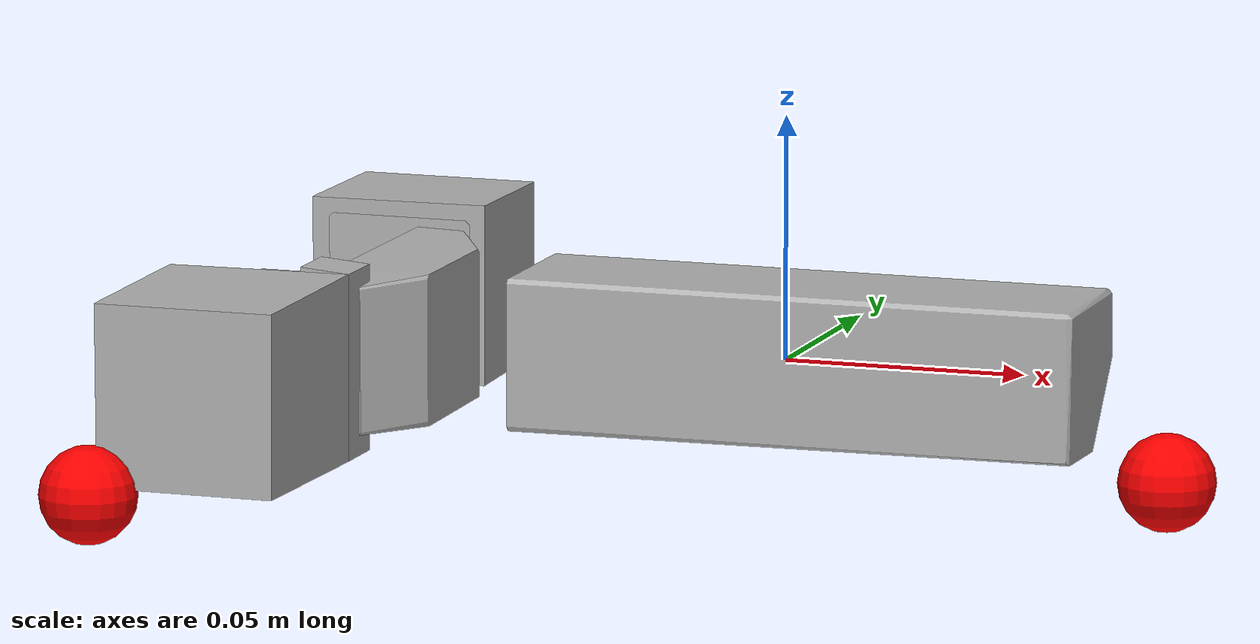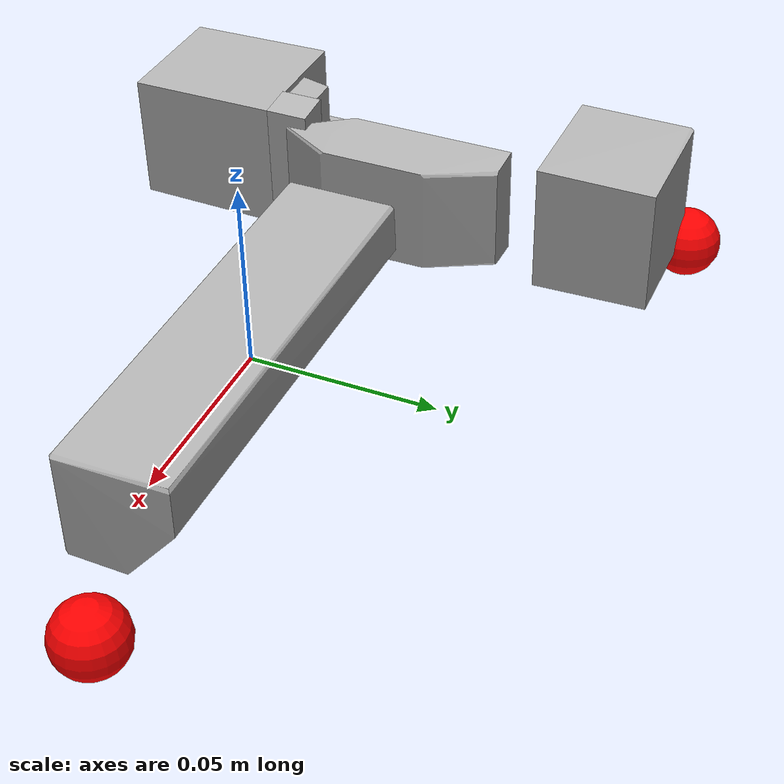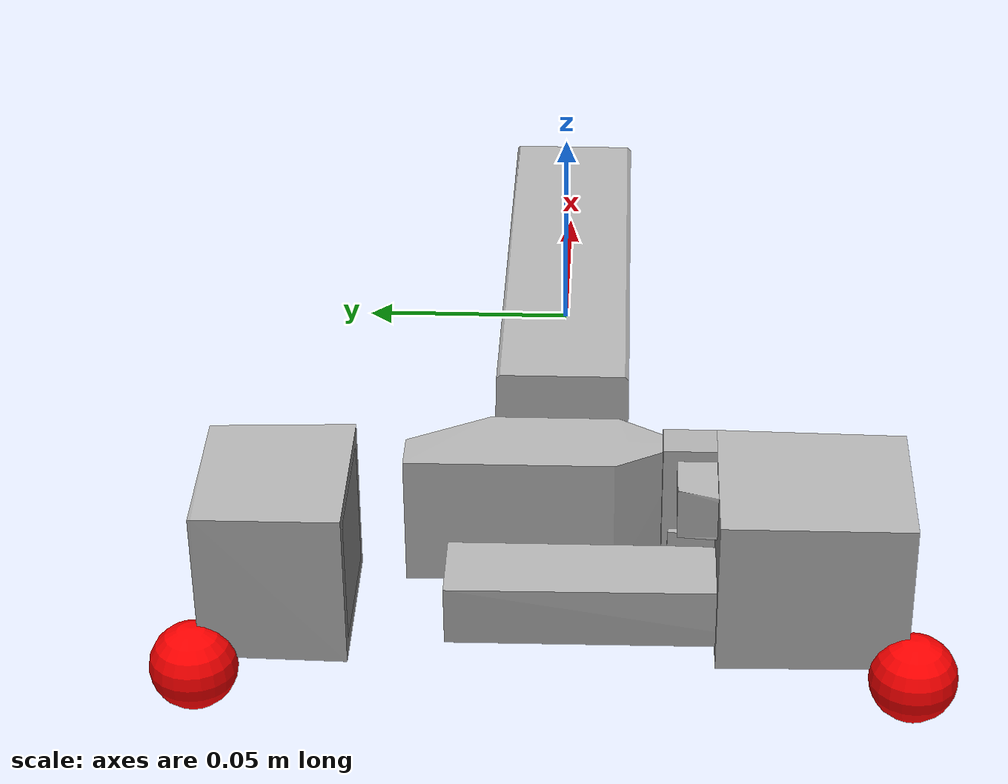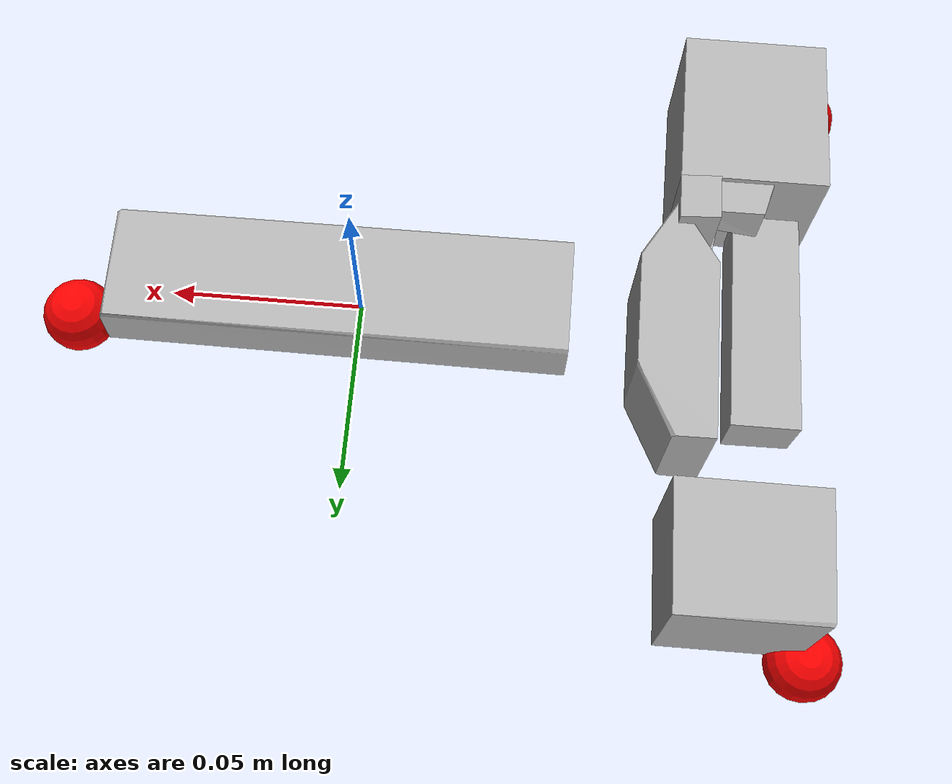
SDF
<?xml version="1.0"?>
<sdf version="1.7">
  <model name="t_shape">

    <link name="vertical_link">
      <inertial>
        <pose>-0.05 0 0 0 0 0</pose>
        <mass>1</mass>
        <!-- Inertia values were calculated to be consistent with the mass and
             geometry size, assuming a uniform density. -->
        <inertia>
            <ixx>1.2666000e-03</ixx>
            <iyy>6.2666000e-03 </iyy>
            <izz>7.2666000e-03 </izz>
            <ixy>3.6732051e-09</ixy>
            <ixz>0.0</ixz>
            <iyz>0.0</iyz>
        </inertia>
      </inertial>

       <visual name="convex_0">
        <pose>0 0 0 0 0 0</pose>
        <geometry>
          <mesh>
            <uri>push_t_white_convex_0.obj</uri>
          </mesh>
        </geometry>
        <material>
          <diffuse>0.7 0.7 0.7 1</diffuse>
        </material>
      </visual>
      <collision name="convex_0_volume">
        <pose>0 0 0 0 0 0</pose>
            <geometry>
          <mesh>
            <uri>push_t_white_convex_0.obj</uri>
          </mesh>
        </geometry>
        <drake:proximity_properties>
          <drake:compliant_hydroelastic/>
          <drake:hydroelastic_modulus> 3.0e7 </drake:hydroelastic_modulus>
          <drake:mesh_resolution_hint> 0.18 </drake:mesh_resolution_hint>
          <drake:hunt_crossley_dissipation>10</drake:hunt_crossley_dissipation>
          <drake:mu_dynamic>0.3</drake:mu_dynamic>
        </drake:proximity_properties>
      </collision>

       <visual name="convex_1">
        <pose>0 0 0 0 0 0</pose>
        <geometry>
          <mesh>
            <uri>push_t_white_convex_1.obj</uri>
          </mesh>
        </geometry>
        <material>
          <diffuse>0.7 0.7 0.7 1</diffuse>
        </material>
      </visual>
      <collision name="convex_1_volume">
        <pose>0 0 0 0 0 0</pose>
            <geometry>
          <mesh>
            <uri>push_t_white_convex_1.obj</uri>
          </mesh>
        </geometry>
        <drake:proximity_properties>
          <drake:compliant_hydroelastic/>
          <drake:hydroelastic_modulus> 3.0e7 </drake:hydroelastic_modulus>
          <drake:mesh_resolution_hint> 0.18 </drake:mesh_resolution_hint>
          <drake:hunt_crossley_dissipation>10</drake:hunt_crossley_dissipation>
          <drake:mu_dynamic>0.3</drake:mu_dynamic>
        </drake:proximity_properties>
      </collision>

       <visual name="convex_2">
        <pose>0 0 0 0 0 0</pose>
        <geometry>
          <mesh>
            <uri>push_t_white_convex_2.obj</uri>
          </mesh>
        </geometry>
        <material>
          <diffuse>0.7 0.7 0.7 1</diffuse>
        </material>
      </visual>
      <collision name="convex_2_volume">
        <pose>0 0 0 0 0 0</pose>
            <geometry>
          <mesh>
            <uri>push_t_white_convex_2.obj</uri>
          </mesh>
        </geometry>
        <drake:proximity_properties>
          <drake:compliant_hydroelastic/>
          <drake:hydroelastic_modulus> 3.0e7 </drake:hydroelastic_modulus>
          <drake:mesh_resolution_hint> 0.18 </drake:mesh_resolution_hint>
          <drake:hunt_crossley_dissipation>10</drake:hunt_crossley_dissipation>
          <drake:mu_dynamic>0.3</drake:mu_dynamic>
        </drake:proximity_properties>
      </collision>

       <visual name="convex_3">
        <pose>0 0 0 0 0 0</pose>
        <geometry>
          <mesh>
            <uri>push_t_white_convex_3.obj</uri>
          </mesh>
        </geometry>
        <material>
          <diffuse>0.7 0.7 0.7 1</diffuse>
        </material>
      </visual>
      <collision name="convex_3_volume">
        <pose>0 0 0 0 0 0</pose>
            <geometry>
          <mesh>
            <uri>push_t_white_convex_3.obj</uri>
          </mesh>
        </geometry>
        <drake:proximity_properties>
          <drake:compliant_hydroelastic/>
          <drake:hydroelastic_modulus> 3.0e7 </drake:hydroelastic_modulus>
          <drake:mesh_resolution_hint> 0.18 </drake:mesh_resolution_hint>
          <drake:hunt_crossley_dissipation>10</drake:hunt_crossley_dissipation>
          <drake:mu_dynamic>0.3</drake:mu_dynamic>
        </drake:proximity_properties>
      </collision>

       <visual name="convex_4">
        <pose>0 0 0 0 0 0</pose>
        <geometry>
          <mesh>
            <uri>push_t_white_convex_4.obj</uri>
          </mesh>
        </geometry>
        <material>
          <diffuse>0.7 0.7 0.7 1</diffuse>
        </material>
      </visual>
      <collision name="convex_4_volume">
        <pose>0 0 0 0 0 0</pose>
            <geometry>
          <mesh>
            <uri>push_t_white_convex_4.obj</uri>
          </mesh>
        </geometry>
        <drake:proximity_properties>
          <drake:compliant_hydroelastic/>
          <drake:hydroelastic_modulus> 3.0e7 </drake:hydroelastic_modulus>
          <drake:mesh_resolution_hint> 0.18 </drake:mesh_resolution_hint>
          <drake:hunt_crossley_dissipation>10</drake:hunt_crossley_dissipation>
          <drake:mu_dynamic>0.3</drake:mu_dynamic>
        </drake:proximity_properties>
      </collision>

       <visual name="convex_5">
        <pose>0 0 0 0 0 0</pose>
        <geometry>
          <mesh>
            <uri>push_t_white_convex_5.obj</uri>
          </mesh>
        </geometry>
        <material>
          <diffuse>0.7 0.7 0.7 1</diffuse>
        </material>
      </visual>
      <collision name="convex_5_volume">
        <pose>0 0 0 0 0 0</pose>
            <geometry>
          <mesh>
            <uri>push_t_white_convex_5.obj</uri>
          </mesh>
        </geometry>
        <drake:proximity_properties>
          <drake:compliant_hydroelastic/>
          <drake:hydroelastic_modulus> 3.0e7 </drake:hydroelastic_modulus>
          <drake:mesh_resolution_hint> 0.18 </drake:mesh_resolution_hint>
          <drake:hunt_crossley_dissipation>10</drake:hunt_crossley_dissipation>
          <drake:mu_dynamic>0.3</drake:mu_dynamic>
        </drake:proximity_properties>
      </collision>

       <visual name="convex_6">
        <pose>0 0 0 0 0 0</pose>
        <geometry>
          <mesh>
            <uri>push_t_white_convex_6.obj</uri>
          </mesh>
        </geometry>
        <material>
          <diffuse>0.7 0.7 0.7 1</diffuse>
        </material>
      </visual>
      <collision name="convex_6_volume">
        <pose>0 0 0 0 0 0</pose>
            <geometry>
          <mesh>
            <uri>push_t_white_convex_6.obj</uri>
          </mesh>
        </geometry>
        <drake:proximity_properties>
          <drake:compliant_hydroelastic/>
          <drake:hydroelastic_modulus> 3.0e7 </drake:hydroelastic_modulus>
          <drake:mesh_resolution_hint> 0.18 </drake:mesh_resolution_hint>
          <drake:hunt_crossley_dissipation>10</drake:hunt_crossley_dissipation>
          <drake:mu_dynamic>0.3</drake:mu_dynamic>
        </drake:proximity_properties>
      </collision>

       <visual name="convex_7">
        <pose>0 0 0 0 0 0</pose>
        <geometry>
          <mesh>
            <uri>push_t_white_convex_7.obj</uri>
          </mesh>
        </geometry>
        <material>
          <diffuse>0.7 0.7 0.7 1</diffuse>
        </material>
      </visual>
      <collision name="convex_7_volume">
        <pose>0 0 0 0 0 0</pose>
            <geometry>
          <mesh>
            <uri>push_t_white_convex_7.obj</uri>
          </mesh>
        </geometry>
        <drake:proximity_properties>
          <drake:compliant_hydroelastic/>
          <drake:hydroelastic_modulus> 3.0e7 </drake:hydroelastic_modulus>
          <drake:mesh_resolution_hint> 0.18 </drake:mesh_resolution_hint>
          <drake:hunt_crossley_dissipation>10</drake:hunt_crossley_dissipation>
          <drake:mu_dynamic>0.3</drake:mu_dynamic>
        </drake:proximity_properties>
      </collision>

       <visual name="convex_8">
        <pose>0 0 0 0 0 0</pose>
        <geometry>
          <mesh>
            <uri>push_t_white_convex_8.obj</uri>
          </mesh>
        </geometry>
        <material>
          <diffuse>0.7 0.7 0.7 1</diffuse>
        </material>
      </visual>
      <collision name="convex_8_volume">
        <pose>0 0 0 0 0 0</pose>
            <geometry>
          <mesh>
            <uri>push_t_white_convex_8.obj</uri>
          </mesh>
        </geometry>
        <drake:proximity_properties>
          <drake:compliant_hydroelastic/>
          <drake:hydroelastic_modulus> 3.0e7 </drake:hydroelastic_modulus>
          <drake:mesh_resolution_hint> 0.18 </drake:mesh_resolution_hint>
          <drake:hunt_crossley_dissipation>10</drake:hunt_crossley_dissipation>
          <drake:mu_dynamic>0.3</drake:mu_dynamic>
        </drake:proximity_properties>
      </collision>

       <visual name="convex_9">
        <pose>0 0 0 0 0 0</pose>
        <geometry>
          <mesh>
            <uri>push_t_white_convex_9.obj</uri>
          </mesh>
        </geometry>
        <material>
          <diffuse>0.7 0.7 0.7 1</diffuse>
        </material>
      </visual>
      <collision name="convex_9_volume">
        <pose>0 0 0 0 0 0</pose>
            <geometry>
          <mesh>
            <uri>push_t_white_convex_9.obj</uri>
          </mesh>
        </geometry>
        <drake:proximity_properties>
          <drake:compliant_hydroelastic/>
          <drake:hydroelastic_modulus> 3.0e7 </drake:hydroelastic_modulus>
          <drake:mesh_resolution_hint> 0.18 </drake:mesh_resolution_hint>
          <drake:hunt_crossley_dissipation>10</drake:hunt_crossley_dissipation>
          <drake:mu_dynamic>0.3</drake:mu_dynamic>
        </drake:proximity_properties>
      </collision>
    </link>

    <link name="corner_nxynz">
      <inertial>
        <pose>0 0 0 0 0 0</pose>
        <mass>0</mass>
        <inertia>
          <ixx>0.</ixx>
          <ixy>0</ixy>
          <ixz>0</ixz>
          <iyy>0.</iyy>
          <iyz>0</iyz>
          <izz>0.</izz>
        </inertia>
      </inertial>
    <collision name="corner_nxynz_">
        <geometry>
          <sphere>
            <radius>0.001</radius>
          </sphere>
        </geometry>
        <drake:proximity_properties>
        <drake:mu_dynamic>0.3</drake:mu_dynamic>
        </drake:proximity_properties>
        <pose> -0.12 0.08 -0.02 0 0 0</pose>
      </collision>
    <visual name="corner_nxynz">
        <geometry>
          <sphere>
            <radius>0.01</radius>
          </sphere>
        </geometry>
        <material>
        <diffuse>1 0 0 1</diffuse>
        </material>
        <pose> -0.12 0.08 -0.02 0 0 0</pose>
      </visual>
    </link>

    <link name="corner_nxnynz">
      <inertial>
        <pose>0 0 0 0 0 0</pose>
        <mass>0</mass>
        <inertia>
          <ixx>0.</ixx>
          <ixy>0</ixy>
          <ixz>0</ixz>
          <iyy>0.</iyy>
          <iyz>0</iyz>
          <izz>0.</izz>
        </inertia>
      </inertial>
    <collision name="corner_nxnynz">
        <geometry>
          <sphere>
            <radius>0.001</radius>
          </sphere>
        </geometry>
        <drake:proximity_properties>
        <drake:mu_dynamic>0.3</drake:mu_dynamic>
        </drake:proximity_properties>
        <pose> -0.12 -0.08 -0.02 0 0 0</pose>
      </collision>
    <visual name="corner_nxnynz">
        <geometry>
          <sphere>
            <radius>0.01</radius>
          </sphere>
        </geometry>
        <material>
        <diffuse>1 0 0 1</diffuse>
        </material>
        <pose> -0.12 -0.08 -0.02 0 0 0</pose>
      </visual>
    </link>

    <link name="corner_xynz">
      <inertial>
        <pose>0 0 0 0 0 0</pose>
        <mass>0</mass>
        <inertia>
          <ixx>0.</ixx>
          <ixy>0</ixy>
          <ixz>0</ixz>
          <iyy>0.</iyy>
          <iyz>0</iyz>
          <izz>0.</izz>
        </inertia>
      </inertial>
    <collision name="corner_xynz">
        <geometry>
          <sphere>
            <radius>0.001</radius>
          </sphere>
        </geometry>
        <drake:proximity_properties>
        <drake:mu_dynamic>0.3</drake:mu_dynamic>
        </drake:proximity_properties>
        <pose> 0.08 0.0 -0.02 0 0 0</pose>
      </collision>
    <visual name="corner_xynz">
        <geometry>
          <sphere>
            <radius>0.01</radius>
          </sphere>
        </geometry>
        <material>
        <diffuse>1 0 0 1</diffuse>
        </material>
        <pose> 0.08 0.0 -0.02 0 0 0</pose>
      </visual>
    </link>

    <joint name="corner_nxynz_joint" type="fixed">
      <!-- Parent and child links for the joint -->
      <parent>vertical_link</parent>
      <child>corner_nxynz</child>
      <!-- Pose of the joint relative to the parent link -->
      <pose>0 0 0 0 0 0</pose>
    </joint>

    <joint name="corner_nxnynz_joint" type="fixed">
      <!-- Parent and child links for the joint -->
      <parent>vertical_link</parent>
      <child>corner_nxnynz</child>
      <!-- Pose of the joint relative to the parent link -->
      <pose>0 0 0 0 0 0</pose>
    </joint>

    <joint name="corner_xynz_joint" type="fixed">
      <!-- Parent and child links for the joint -->
      <parent>vertical_link</parent>
      <child>corner_xynz</child>
      <!-- Pose of the joint relative to the parent link -->
      <pose>0 0 0 0 0 0</pose>
    </joint>

  </model>
</sdf>
